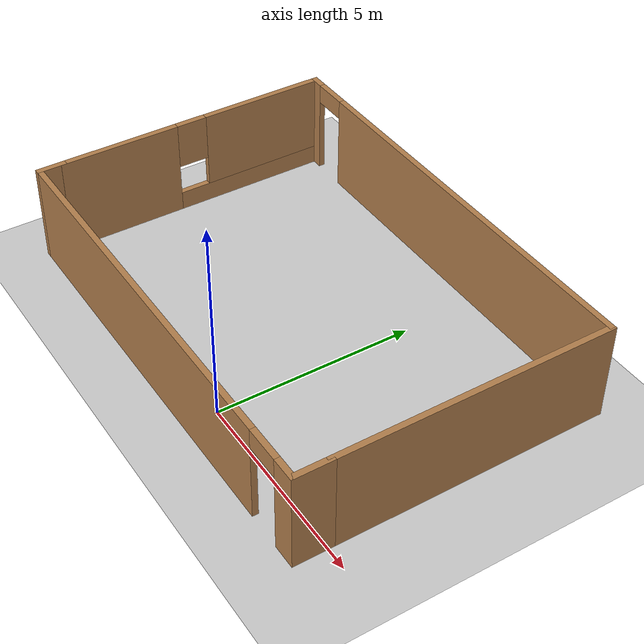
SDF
<sdf version="1.7">
 <world name="default">
  <light name="sun" type="directional">
   <pose>0 0 10 0 -0 0</pose>
   <diffuse>0.8 0.8 0.8 1</diffuse>
   <specular>0.2 0.2 0.2 1</specular>
   <attenuation>
    <range>1000</range>
    <constant>0.9</constant>
    <linear>0.01</linear>
    <quadratic>0.001</quadratic>
   </attenuation>
   <direction>-0.5 0.1 -0.9</direction>
   <spot><inner_angle>0</inner_angle><outer_angle>0</outer_angle><falloff>0</falloff></spot>
  </light>
  <model name="ground_plane">
   <static>1</static>
   <link name="link">
    <collision name="collision">
     <geometry><plane><normal>0 0 1</normal><size>100 100</size></plane></geometry>
     <surface>
      <contact><collide_bitmask>65535</collide_bitmask></contact>
      <friction><ode><mu>100</mu><mu2>50</mu2></ode></friction>
     </surface>
    </collision>
    <visual name="visual">
     <cast_shadows>0</cast_shadows>
     <geometry><plane><normal>0 0 1</normal><size>100 100</size></plane></geometry>
     <material>
      <script><uri>file://media/materials/scripts/gazebo.material</uri><name>Gazebo/Grey</name></script>
     </material>
    </visual>
   </link>
  </model>
  <gravity>0 0 -9.8</gravity>
  <magnetic_field>6e-06 2.3e-05 -4.2e-05</magnetic_field>
  <atmosphere type="adiabatic"/>
  <physics type="ode">
   <max_step_size>0.001</max_step_size>
   <real_time_factor>1</real_time_factor>
   <real_time_update_rate>1000</real_time_update_rate>
  </physics>
  <scene><ambient>0.4 0.4 0.4 1</ambient><background>0.7 0.7 0.7 1</background><shadows>1</shadows></scene>
  <audio><device>default</device></audio>
  <spherical_coordinates>
   <surface_model>EARTH_WGS84</surface_model>
   <latitude_deg>0</latitude_deg>
   <longitude_deg>0</longitude_deg>
   <elevation>0</elevation>
   <heading_deg>0</heading_deg>
  </spherical_coordinates>
  <model name="Untitled">
   <pose>-1.30764 3.08925 0 0 -0 0</pose>
   <link name="Wall_10">
    <collision name="Wall_10_Collision">
     <geometry><box><size>7 0.15 2.5</size></box></geometry>
     <pose>0 0 1.25 0 -0 0</pose>
    </collision>
    <visual name="Wall_10_Visual">
     <pose>0 0 1.25 0 -0 0</pose>
     <geometry><box><size>7 0.15 2.5</size></box></geometry>
     <material>
      <script><uri>file://media/materials/scripts/gazebo.material</uri><name>Gazebo/Wood</name></script>
      <ambient>1 1 1 1</ambient>
     </material>
     <meta><layer>0</layer></meta>
    </visual>
    <pose>5.675 0.425 0 0 -0 -1.5708</pose>
   </link>
   <link name="Wall_11">
    <collision name="Wall_11_Collision">
     <geometry><box><size>1 0.15 2.5</size></box></geometry>
     <pose>0 0 1.25 0 -0 0</pose>
    </collision>
    <visual name="Wall_11_Visual">
     <pose>0 0 1.25 0 -0 0</pose>
     <geometry><box><size>1 0.15 2.5</size></box></geometry>
     <material>
      <script><uri>file://media/materials/scripts/gazebo.material</uri><name>Gazebo/Wood</name></script>
      <ambient>1 1 1 1</ambient>
     </material>
     <meta><layer>0</layer></meta>
    </visual>
    <pose>5.675 -3.425 0 0 -0 -1.5708</pose>
   </link>
   <link name="Wall_12">
    <pose>0 -3.85 0 0 -0 3.14159</pose>
    <visual name="Wall_12_Visual_0">
     <pose>-5.44184 0 1.25 0 -0 0</pose>
     <geometry><box><size>0.61631 0.15 2.5</size></box></geometry>
     <material>
      <script><uri>file://media/materials/scripts/gazebo.material</uri><name>Gazebo/Wood</name></script>
      <ambient>1 1 1 1</ambient>
     </material>
     <meta><layer>0</layer></meta>
    </visual>
    <collision name="Wall_12_Collision_0">
     <geometry><box><size>0.61631 0.15 2.5</size></box></geometry>
     <pose>-5.44184 0 1.25 0 -0 0</pose>
    </collision>
    <visual name="Wall_12_Visual_1">
     <pose>0.758155 0 1.25 0 -0 0</pose>
     <geometry><box><size>9.98369 0.15 2.5</size></box></geometry>
     <material>
      <script><uri>file://media/materials/scripts/gazebo.material</uri><name>Gazebo/Wood</name></script>
      <ambient>1 1 1 1</ambient>
     </material>
     <meta><layer>0</layer></meta>
    </visual>
    <collision name="Wall_12_Collision_1">
     <geometry><box><size>9.98369 0.15 2.5</size></box></geometry>
     <pose>0.758155 0 1.25 0 -0 0</pose>
    </collision>
    <visual name="Wall_12_Visual_2">
     <pose>-4.68369 0 2.25 0 -0 0</pose>
     <geometry><box><size>0.9 0.15 0.5</size></box></geometry>
     <material>
      <script><uri>file://media/materials/scripts/gazebo.material</uri><name>Gazebo/Wood</name></script>
      <ambient>1 1 1 1</ambient>
     </material>
     <meta><layer>0</layer></meta>
    </visual>
    <collision name="Wall_12_Collision_2">
     <geometry><box><size>0.9 0.15 0.5</size></box></geometry>
     <pose>-4.68369 0 2.25 0 -0 0</pose>
    </collision>
   </link>
   <link name="Wall_13">
    <collision name="Wall_13_Collision">
     <geometry><box><size>0.75 0.15 2.5</size></box></geometry>
     <pose>0 0 1.25 0 -0 0</pose>
    </collision>
    <visual name="Wall_13_Visual">
     <pose>0 0 1.25 0 -0 0</pose>
     <geometry><box><size>0.75 0.15 2.5</size></box></geometry>
     <material>
      <script><uri>file://media/materials/scripts/gazebo.material</uri><name>Gazebo/Wood</name></script>
      <ambient>1 1 1 1</ambient>
     </material>
     <meta><layer>0</layer></meta>
    </visual>
    <pose>-5.675 -3.55 0 0 -0 1.5708</pose>
   </link>
   <link name="Wall_8">
    <pose>-5.675 0.3 0 0 -0 1.5708</pose>
    <visual name="Wall_8_Visual_0">
     <pose>-2.07098 0 1.25 0 -0 0</pose>
     <geometry><box><size>3.10803 0.15 2.5</size></box></geometry>
     <material>
      <script><uri>file://media/materials/scripts/gazebo.material</uri><name>Gazebo/Wood</name></script>
      <ambient>1 1 1 1</ambient>
     </material>
     <meta><layer>0</layer></meta>
    </visual>
    <collision name="Wall_8_Collision_0">
     <geometry><box><size>3.10803 0.15 2.5</size></box></geometry>
     <pose>-2.07098 0 1.25 0 -0 0</pose>
    </collision>
    <visual name="Wall_8_Visual_1">
     <pose>1.55401 0 0.25 0 -0 0</pose>
     <geometry><box><size>4.14197 0.15 0.5</size></box></geometry>
     <material>
      <script><uri>file://media/materials/scripts/gazebo.material</uri><name>Gazebo/Wood</name></script>
      <ambient>1 1 1 1</ambient>
     </material>
     <meta><layer>0</layer></meta>
    </visual>
    <collision name="Wall_8_Collision_1">
     <geometry><box><size>4.14197 0.15 0.5</size></box></geometry>
     <pose>1.55401 0 0.25 0 -0 0</pose>
    </collision>
    <visual name="Wall_8_Visual_2">
     <pose>1.95402 0 1.5 0 -0 0</pose>
     <geometry><box><size>3.34197 0.15 2</size></box></geometry>
     <material>
      <script><uri>file://media/materials/scripts/gazebo.material</uri><name>Gazebo/Wood</name></script>
      <ambient>1 1 1 1</ambient>
     </material>
     <meta><layer>0</layer></meta>
    </visual>
    <collision name="Wall_8_Collision_2">
     <geometry><box><size>3.34197 0.15 2</size></box></geometry>
     <pose>1.95402 0 1.5 0 -0 0</pose>
    </collision>
    <visual name="Wall_8_Visual_3">
     <pose>-0.116971 0 1.9 0 -0 0</pose>
     <geometry><box><size>0.8 0.15 1.2</size></box></geometry>
     <material>
      <script><uri>file://media/materials/scripts/gazebo.material</uri><name>Gazebo/Wood</name></script>
      <ambient>1 1 1 1</ambient>
     </material>
     <meta><layer>0</layer></meta>
    </visual>
    <collision name="Wall_8_Collision_3">
     <geometry><box><size>0.8 0.15 1.2</size></box></geometry>
     <pose>-0.116971 0 1.9 0 -0 0</pose>
    </collision>
   </link>
   <link name="Wall_9">
    <pose>0 3.85 0 0 -0 0</pose>
    <visual name="Wall_9_Visual_0">
     <pose>-5.54619 0 1.25 0 -0 0</pose>
     <geometry><box><size>0.407618 0.15 2.5</size></box></geometry>
     <material>
      <script><uri>file://media/materials/scripts/gazebo.material</uri><name>Gazebo/Wood</name></script>
      <ambient>1 1 1 1</ambient>
     </material>
     <meta><layer>0</layer></meta>
    </visual>
    <collision name="Wall_9_Collision_0">
     <geometry><box><size>0.407618 0.15 2.5</size></box></geometry>
     <pose>-5.54619 0 1.25 0 -0 0</pose>
    </collision>
    <visual name="Wall_9_Visual_1">
     <pose>0.653809 0 1.25 0 -0 0</pose>
     <geometry><box><size>10.1924 0.15 2.5</size></box></geometry>
     <material>
      <script><uri>file://media/materials/scripts/gazebo.material</uri><name>Gazebo/Wood</name></script>
      <ambient>1 1 1 1</ambient>
     </material>
     <meta><layer>0</layer></meta>
    </visual>
    <collision name="Wall_9_Collision_1">
     <geometry><box><size>10.1924 0.15 2.5</size></box></geometry>
     <pose>0.653809 0 1.25 0 -0 0</pose>
    </collision>
    <visual name="Wall_9_Visual_2">
     <pose>-4.89238 0 2.25 0 -0 0</pose>
     <geometry><box><size>0.9 0.15 0.5</size></box></geometry>
     <material>
      <script><uri>file://media/materials/scripts/gazebo.material</uri><name>Gazebo/Wood</name></script>
      <ambient>1 1 1 1</ambient>
     </material>
     <meta><layer>0</layer></meta>
    </visual>
    <collision name="Wall_9_Collision_2">
     <geometry><box><size>0.9 0.15 0.5</size></box></geometry>
     <pose>-4.89238 0 2.25 0 -0 0</pose>
    </collision>
   </link>
   <static>1</static>
  </model>
 </world>
</sdf>
